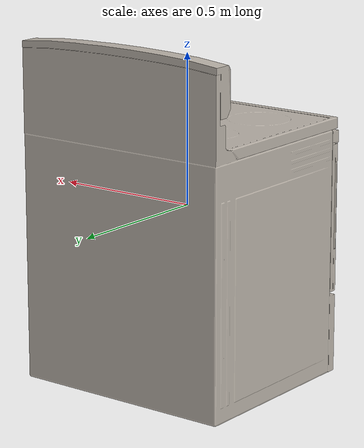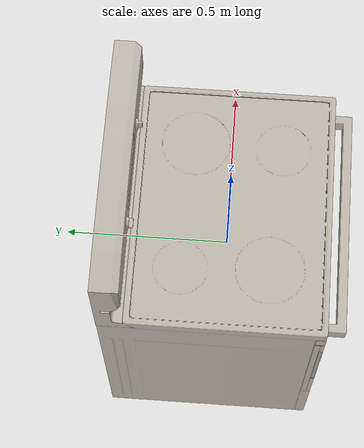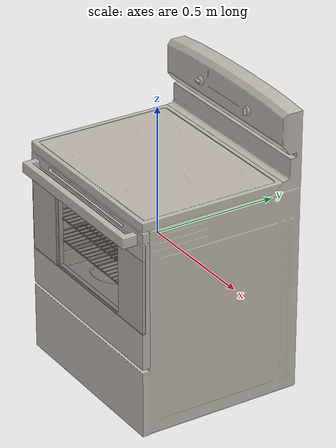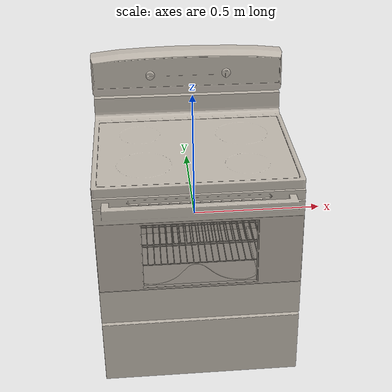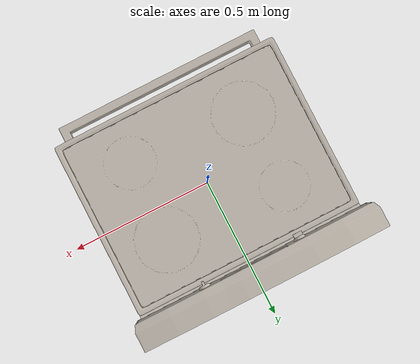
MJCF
<?xml version='1.0' encoding='UTF-8'?>
<mujoco model="model">
  <option timestep="0.002" gravity="0.0 0.0 -9.81"/>
  <compiler angle="radian"/>
  <asset>
    <mesh file="visuals/door.obj" name="door_vis"/>
    <mesh file="visuals/door_Clear.obj" name="door_Clear_vis"/>
    <mesh file="visuals/knob_temp.obj" name="knob_temp_vis"/>
    <mesh file="visuals/knob_time.obj" name="knob_time_vis"/>
    <mesh file="visuals/Body001.obj" name="Body001_vis"/>
    <mesh file="visuals/rack0.obj" name="rack0_vis"/>
    <mesh file="visuals/rack1.obj" name="rack1_vis"/>
    <texture file="visuals/T_BC001.png" name="Body001_material" type="2d"/>
    <material name="Body001_material" rgba="1 1 1 1.0" texture="Body001_material" shininess="0.5" specular="2"/>
    <texture file="visuals/T_BC001.png" name="door_material" type="2d"/>
    <material name="door_material" rgba="1 1 1 1.0" texture="door_material" shininess="0.5" specular="2"/>
    <texture file="visuals/T_BC001.png" name="door_Clear_material" type="2d"/>
    <material name="door_Clear_material" rgba="1 1 1 0.8454544544219971" texture="door_Clear_material" shininess="0.5" specular="2"/>
    <texture file="visuals/T_BC001.png" name="knob_temp_material" type="2d"/>
    <material name="knob_temp_material" rgba="1 1 1 1.0" texture="knob_temp_material" shininess="0.5" specular="2"/>
    <texture file="visuals/T_BC001.png" name="knob_time_material" type="2d"/>
    <material name="knob_time_material" rgba="1 1 1 1.0" texture="knob_time_material" shininess="0.5" specular="2"/>
    <texture file="visuals/T_BC001.png" name="rack0_material" type="2d"/>
    <material name="rack0_material" rgba="1 1 1 1.0" texture="rack0_material" shininess="0.5" specular="3"/>
    <texture file="visuals/T_BC001.png" name="rack1_material" type="2d"/>
    <material name="rack1_material" rgba="1 1 1 1.0" texture="rack1_material" shininess="0.5" specular="3"/>
  </asset>
  <default>
    <default class="visual">
      <geom conaffinity="0" contype="0" group="1" type="mesh"/>
    </default>
    <default class="collision">
      <geom group="0" rgba="0.5 0 0 0.5"/>
    </default>
    <default class="spawn">
      <geom group="0" rgba="1 1 1 0.5" contype="0" conaffinity="0"/>
      <site group="0" rgba="1 1 1 0.5"/>
    </default>
    <default class="region">
      <geom group="1" conaffinity="0" contype="0" rgba="0 1 0 0"/>
    </default>
  </default>
  <worldbody>
    <body>
      <body name="object">
        <geom mesh="Body001_vis" type="mesh" solimp="0.998 0.998 0.001" solref="0.001 1" friction="0.95 0.3 0.1" class="visual" material="Body001_material"/>
        <geom class="collision" type="box" pos="0.00089842 0.14607251 -0.01931937" size="0.1842728704214096 0.02023025043308735 0.15883684158325195" quat="1.0 0.0 0.0 0.0"/>
        <geom class="collision" type="box" pos="0.00089841 0.12155059 0.13794458" size="0.18427562713623047 0.042152296751737595 0.003433183068409562" quat="1.0 0.0 0.0 0.0"/>
        <geom class="collision" type="box" pos="0.00089842 0.06253739 0.14689711" size="0.1842738538980484 0.003433177014812827 0.018306860700249672" quat="0.8713995814323425 0.4905739724636078 -1.0892933037196458e-16 5.558277650585609e-24"/>
        <geom class="collision" type="box" pos="0.00089842 -0.04483439 0.15603474" size="0.18427304923534393 0.09639181196689606 0.003433159552514553" quat="1.0 0.0 0.0 0.0"/>
        <geom class="collision" type="box" pos="0.18191887 0.01247511 -0.01964097" size="0.0025349296629428864 0.15284977853298187 0.15745358169078827" quat="1.0 0.0 0.0 0.0"/>
        <geom class="collision" type="box" pos="-0.18200114 0.01247512 -0.01964097" size="0.0029699760489165783 0.15284988284111023 0.15745358169078827" quat="1.0 0.0 0.0 0.0"/>
        <geom class="collision" type="box" pos="0.00016875 -0.14095975 0.14374819" size="0.18987920880317688 0.0028823947068303823 0.035194281488657" quat="1.0 0.0 0.0 0.0"/>
        <geom class="collision" type="box" pos="0.00089842 -0.00030835 -0.16815446" size="0.1842738538980484 0.11160484701395035 0.0068295723758637905" quat="1.0 0.0 0.0 0.0"/>
        <geom class="collision" type="box" pos="-0.14983651 -0.00030835 -0.08318100" size="0.010711953975260258 0.11160484701395035 0.004108111839741468" quat="1.0 0.0 0.0 0.0"/>
        <geom class="collision" type="box" pos="0.15347981 -0.00030835 -0.08318100" size="0.010711953975260258 0.11160484701395035 0.004108110908418894" quat="1.0 0.0 0.0 0.0"/>
        <geom class="collision" type="box" pos="0.15347981 -0.00030835 0.00048875" size="0.010711953975260258 0.11160484701395035 0.004108109511435032" quat="1.0 0.0 0.0 0.0"/>
        <geom class="collision" type="box" pos="-0.14983651 -0.00030835 0.00020747" size="0.010711953975260258 0.11160484701395035 0.00410810811445117" quat="1.0 0.0 0.0 0.0"/>
        <geom class="collision" type="box" pos="-0.16838537 0.00745535 -0.01332200" size="0.012227188795804977 0.11837634444236755 0.15113461017608643" quat="1.0 0.0 0.0 0.0"/>
        <geom class="collision" type="box" pos="0.17344902 0.00745535 -0.01332200" size="0.012227192521095276 0.11837638169527054 0.15113461017608643" quat="1.0 0.0 0.0 0.0"/>
        <geom class="collision" type="box" pos="0.00089841 0.01062732 0.10137647" size="0.18427450954914093 0.11528896540403366 0.003433183068409562" quat="1.0 0.0 0.0 0.0"/>
        <geom class="collision" type="box" pos="-0.18091738 -0.04132867 0.14698391" size="0.004173911642283201 0.09549765288829803 0.008784252218902111" quat="1.0 0.0 0.0 0.0"/>
        <geom class="collision" type="box" pos="0.18055065 -0.04132867 0.14698391" size="0.004173911642283201 0.09549765288829803 0.008784252218902111" quat="1.0 0.0 0.0 0.0"/>
        <body name="door">
          <joint axis="1.0 0.0 0.0" pos="-0.00107127 -0.14330349320016086 -0.15947104621780395" limited="true" name="door_joint" range="0.0 1.15" type="hinge" damping="1" frictionloss="1" armature="1" stiffness="2"/>
          <geom mesh="door_vis" type="mesh" solimp="0.998 0.998 0.001" solref="0.001 1" friction="0.95 0.3 0.1" class="visual" material="door_material"/>
          <geom class="collision" type="box" pos="0.00005809 -0.15791390 0.08553940" size="0.17045311629772186 0.008373437449336052 0.008373411372303963" quat="1.0 0.0 0.0 0.0" name="door_handle_main"/>
          <geom class="collision" type="box" pos="0.15809081 -0.14967045 0.08558916" size="0.010405185632407665 0.005891187582165003 0.00830787979066372" quat="1.0 0.0 0.0 0.0"/>
          <geom class="collision" type="box" pos="-0.15714347 -0.14967043 0.08558916" size="0.01171176414936781 0.005891087930649519 0.00830787979066372" quat="1.0 0.0 0.0 0.0"/>
          <geom class="collision" type="box" pos="-0.00107127 -0.14216618 -0.02673788" size="0.18805961310863495 0.001137313200160861 0.13273316621780396" quat="1.0 0.0 0.0 0.0" name="door_main"/>
          <geom class="collision" type="box" pos="0.00000081 -0.13420015 -0.03263013" size="0.17550911009311676 0.0058564175851643085 0.12776514887809753" quat="1.0 0.0 0.0 0.0"/>
          <body name="door_Clear">
            <geom mesh="door_Clear_vis" type="mesh" solimp="0.998 0.998 0.001" solref="0.001 1" friction="0.95 0.3 0.1" class="visual" material="door_Clear_material"/>
          </body>
        </body>
        <body name="knob_temp">
          <joint axis="0.0 1.0 0.0" pos="0.08382878 -0.15461331 0.14224292" limited="true" name="knob_temp_joint" range="0.0 5.061454830783556" type="hinge" damping="0.05" frictionloss="0.75" armature="1"/>
          <geom mesh="knob_temp_vis" type="mesh" solimp="0.998 0.998 0.001" solref="0.001 1" friction="0.95 0.3 0.1" class="visual" material="knob_temp_material"/>
          <geom class="collision" type="box" pos="0.08345215 -0.16193726 0.14245422" size="0.010036246851086617 0.004394785966724157 0.002819891320541501" quat="0.8870107531547546 -1.9386227734230488e-08 -0.46174874901771545 -1.0091833146930185e-08" friction="100 0.5 0.01"/>
          <geom class="collision" type="cylinder" pos="0.08390172 -0.15222529 0.14203148" size="0.013253416866064072 0.005840979982167482" quat="0.7071067094802856 0.70710688829422 0.0 0.0" name="knob_temp_main" friction="100 0.5 0.01"/>
        </body>
        <body name="knob_time">
          <joint axis="0.0 1.0 0.0" pos="-0.08640562 -0.15461337 0.14224292" limited="true" name="knob_time_joint" range="0.0 5.235987755982989" type="hinge" damping="0.05" frictionloss="0.75" armature="1"/>
          <geom mesh="knob_time_vis" type="mesh" solimp="0.998 0.998 0.001" solref="0.001 1" friction="0.95 0.3 0.1" class="visual" material="knob_time_material"/>
          <geom class="collision" type="box" pos="-0.08655074 -0.16193726 0.14236830" size="0.010036244988441467 0.004394786432385445 0.0028198917862027884" quat="1.0 0.0 0.0 0.0" friction="100 0.5 0.01"/>
          <geom class="collision" type="cylinder" pos="-0.08628461 -0.15222529 0.14203148" size="0.013253416866064072 0.005840979982167482" quat="0.7071067094802856 0.70710688829422 0.0 0.0" name="knob_time_main" friction="100 0.5 0.01"/>
        </body>
        <body name="rack0">
          <geom class="region" name="reg_rack0" type="box" pos="-0.0003346199999999938 -0.0006513400000000003 -0.038942505" size="0.1420172 0.08413645 0.028309775"/>
          <joint axis="0.0 -1.0 0.0" pos="-0.00040987 -0.00037133 -0.08246079" limited="true" name="rack0_joint" range="0.0 0.16" type="slide" damping="1" frictionloss="1" armature=".01" stiffness="0.05"/>
          <geom mesh="rack0_vis" type="mesh" solimp="0.998 0.998 0.001" solref="0.001 1" friction="0.95 0.3 0.1" class="visual" material="rack0_material"/>
          <geom class="collision" type="box" pos="-0.00037602 -0.00049587 -0.07507291" size="0.14911521971225739 0.09083700180053711 0.0030218628235161304" quat="1.0 0.0 0.0 0.0"/>
        </body>
        <body name="rack1">
          <geom class="region" name="reg_rack1" type="box" pos="-0.0002718800000000021 -0.0012897299999999959 0.05011203" size="0.12366886 0.08060666 0.043400259999999996"/>
          <joint axis="0.0 -1.0 0.0" pos="0.00004773 -0.00132135 0.00269186" limited="true" name="rack1_joint" range="0.0 0.16" type="slide" damping="1" frictionloss="1" armature=".01" stiffness="0.05"/>
          <geom mesh="rack1_vis" type="mesh" solimp="0.998 0.998 0.001" solref="0.001 1" friction="0.95 0.3 0.1" class="visual" material="rack1_material"/>
          <geom class="collision" type="box" pos="-0.13940570 -0.00124047 0.00894654" size="0.007370077073574066 0.09247566759586334 0.0014819286298006773" quat="1.0 0.0 0.0 0.0"/>
          <geom class="collision" type="box" pos="-0.12858255 -0.00124047 0.00309015" size="0.00809471309185028 0.09247566759586334 0.0014819287462159991" quat="0.8900302052497864 0.0 0.4559015929698944 0.0"/>
          <geom class="collision" type="box" pos="0.12794474 -0.00124047 0.00309015" size="0.00809471309185028 0.09247566759586334 0.0014819287462159991" quat="0.8900302052497864 0.0 -0.4559015929698944 0.0"/>
          <geom class="collision" type="box" pos="0.13898338 -0.00124047 0.00894654" size="0.007452588062733412 0.09247566759586334 0.0014819286298006773" quat="1.0 0.0 0.0 0.0"/>
          <geom class="collision" type="box" pos="-0.00079426 0.08422272 0.00309015" size="0.00809471495449543 0.13404469192028046 0.0014819310745224357" quat="0.6293464303016663 0.3223710060119629 0.3223710358142853 -0.6293464303016663"/>
          <geom class="collision" type="box" pos="-0.00079426 -0.08659488 0.00309015" size="0.00809471495449543 0.13404469192028046 0.0014819310745224357" quat="0.6293464303016663 -0.3223710060119629 -0.3223710358142853 -0.6293464303016663"/>
          <geom class="collision" type="box" pos="0.00091368 0.00202406 -0.00189911" size="0.1369762271642685 0.08556826412677765 0.0038184465374797583" quat="1.0 0.0 0.0 0.0"/>
        </body>
        <geom class="region" name="reg_int" type="box" pos="0.0023620949999999946 0.007408520000000002 -0.03186502499999999" size="0.134838165 0.11351637 0.124447855"/>
        <geom class="region" name="reg_main" type="box" pos="0.0 0.011230439999999994 0.0" size="0.19104828000000001 0.15607257000000002 0.18003145"/>
      </body>
    </body>
  </worldbody>
  <actuator>
    <motor name="door_joint_actuator" joint="door_joint" gear="50"/>
    <motor name="knob_temp_joint_actuator" joint="knob_temp_joint" gear="50"/>
    <motor name="knob_time_joint_actuator" joint="knob_time_joint" gear="50"/>
    <motor name="rack0_joint_actuator" joint="rack0_joint" gear="50"/>
    <motor name="rack1_joint_actuator" joint="rack1_joint" gear="50"/>
  </actuator>
</mujoco>
